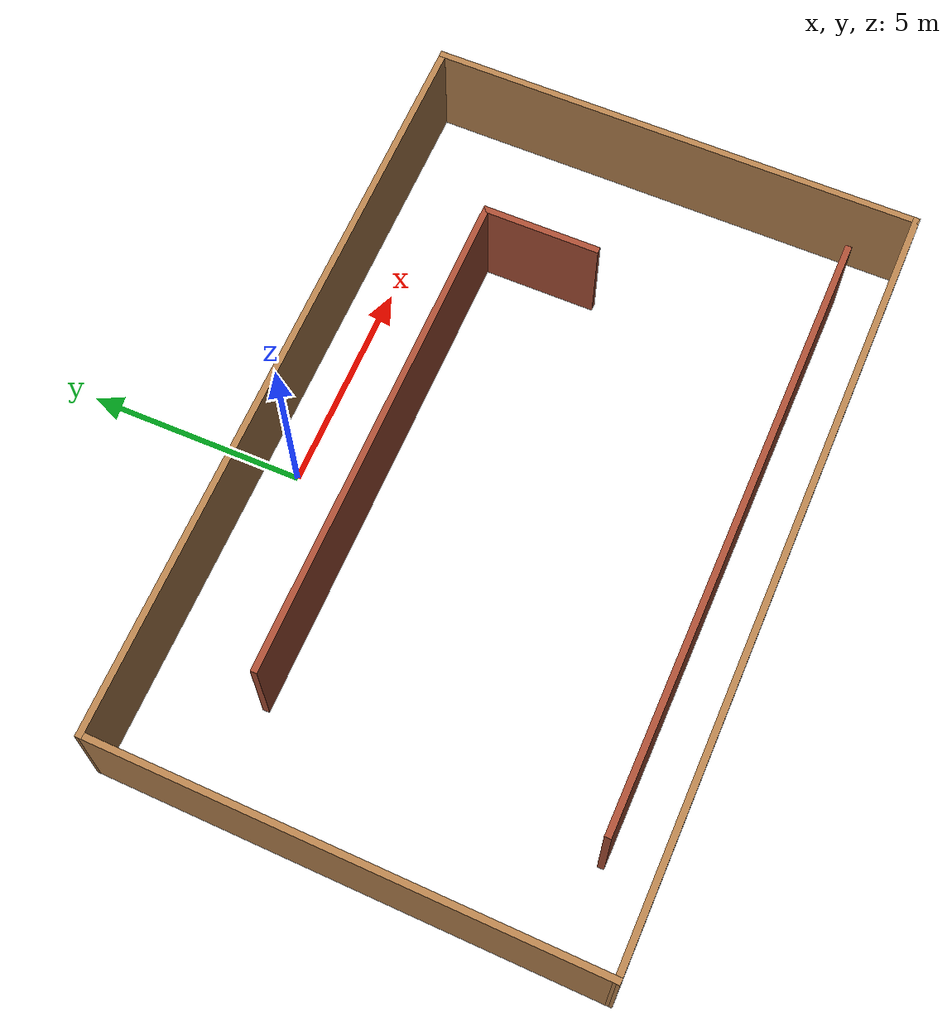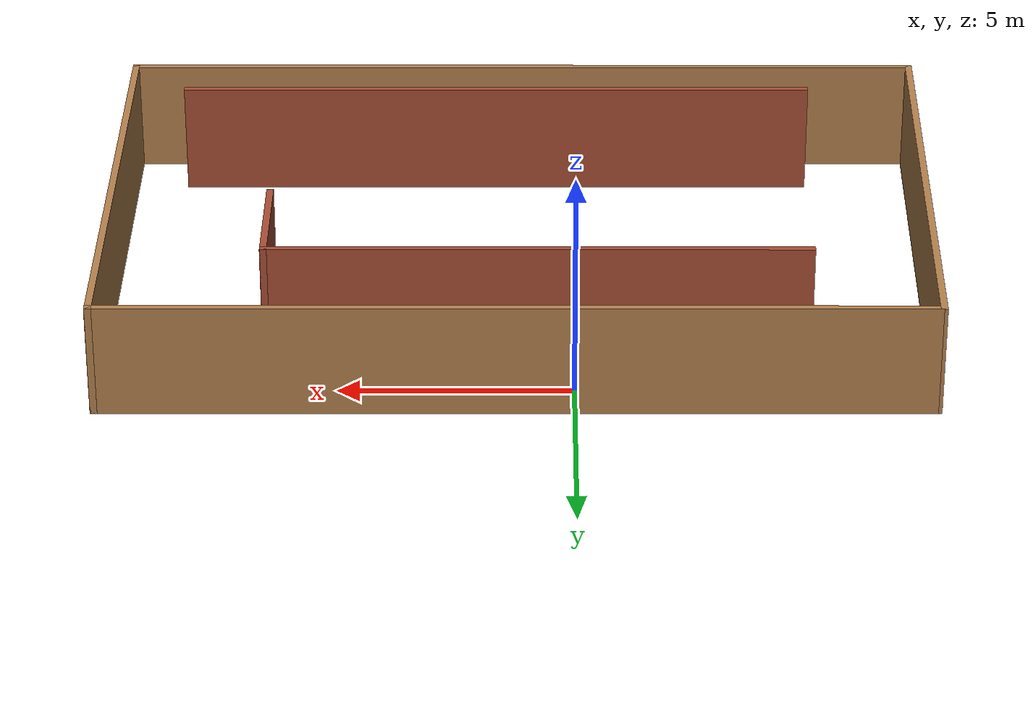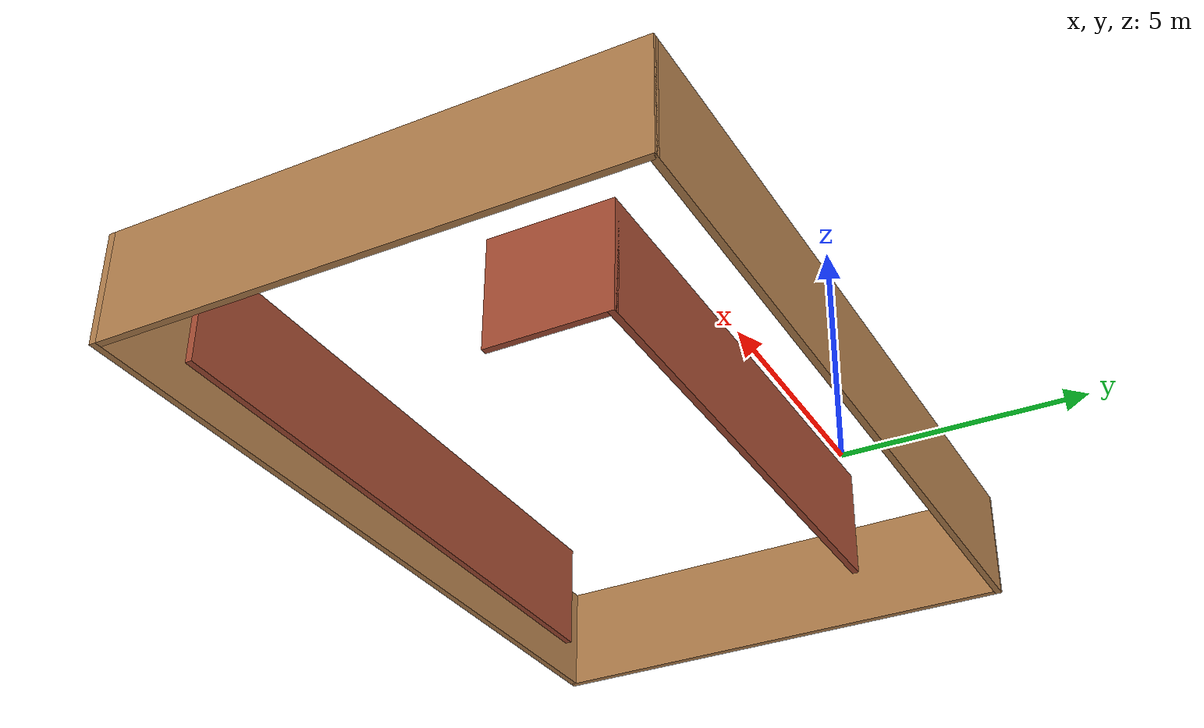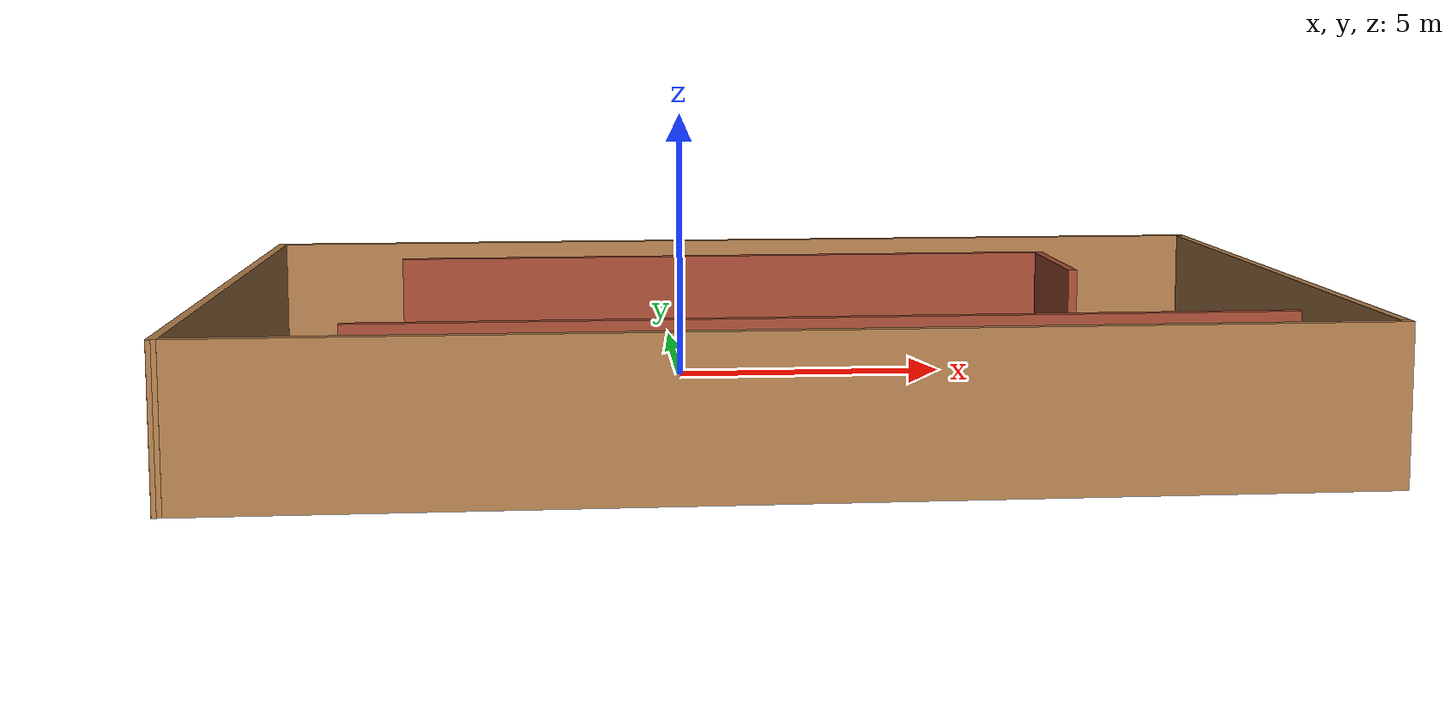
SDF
<?xml version='1.0'?>
<sdf version='1.7'>
  <model name='maze'>
    <pose>1.1063 -4.82808 0 0 -0 0</pose>
    <link name='Wall_15'>
      <collision name='Wall_15_Collision'>
        <geometry>
          <box>
            <size>17.75 0.15 2.5</size>
          </box>
        </geometry>
        <pose>0 0 1.25 0 -0 0</pose>
      </collision>
      <visual name='Wall_15_Visual'>
        <pose>0 0 1.25 0 -0 0</pose>
        <geometry>
          <box>
            <size>17.75 0.15 2.5</size>
          </box>
        </geometry>
        <material>
          <script>
            <uri>file://media/materials/scripts/gazebo.material</uri>
            <name>Gazebo/Wood</name>
          </script>
          <ambient>1 1 1 1</ambient>
        </material>
        <meta>
          <layer>0</layer>
        </meta>
      </visual>
      <pose>0.125816 5.675 0 0 -0 0</pose>
    </link>
    <link name='Wall_18'>
      <collision name='Wall_18_Collision'>
        <geometry>
          <box>
            <size>11.5 0.15 2.5</size>
          </box>
        </geometry>
        <pose>0 0 1.25 0 -0 0</pose>
      </collision>
      <visual name='Wall_18_Visual'>
        <pose>0 0 1.25 0 -0 0</pose>
        <geometry>
          <box>
            <size>11.5 0.15 2.5</size>
          </box>
        </geometry>
        <material>
          <script>
            <uri>file://media/materials/scripts/gazebo.material</uri>
            <name>Gazebo/Wood</name>
          </script>
          <ambient>1 1 1 1</ambient>
        </material>
        <meta>
          <layer>0</layer>
        </meta>
      </visual>
      <pose>8.92582 0 0 0 -0 -1.5708</pose>
    </link>
    <link name='Wall_19'>
      <collision name='Wall_19_Collision'>
        <geometry>
          <box>
            <size>18 0.15 2.5</size>
          </box>
        </geometry>
        <pose>0 0 1.25 0 -0 0</pose>
      </collision>
      <visual name='Wall_19_Visual'>
        <pose>0 0 1.25 0 -0 0</pose>
        <geometry>
          <box>
            <size>18 0.15 2.5</size>
          </box>
        </geometry>
        <material>
          <script>
            <uri>file://media/materials/scripts/gazebo.material</uri>
            <name>Gazebo/Wood</name>
          </script>
          <ambient>1 1 1 1</ambient>
        </material>
        <meta>
          <layer>0</layer>
        </meta>
      </visual>
      <pose>0.000816 -5.675 0 0 -0 3.14159</pose>
    </link>
    <link name='Wall_20'>
      <collision name='Wall_20_Collision'>
        <geometry>
          <box>
            <size>11.5028 0.15 2.5</size>
          </box>
        </geometry>
        <pose>0 0 1.25 0 -0 0</pose>
      </collision>
      <visual name='Wall_20_Visual'>
        <pose>0 0 1.25 0 -0 0</pose>
        <geometry>
          <box>
            <size>11.5028 0.15 2.5</size>
          </box>
        </geometry>
        <material>
          <script>
            <uri>file://media/materials/scripts/gazebo.material</uri>
            <name>Gazebo/Wood</name>
          </script>
          <ambient>1 1 1 1</ambient>
        </material>
        <meta>
          <layer>0</layer>
        </meta>
      </visual>
      <pose>-8.79918 0 0 0 -0 1.54877</pose>
    </link>
    <link name='Wall_22'>
      <collision name='Wall_22_Collision'>
        <geometry>
          <box>
            <size>11.75 0.15 2.5</size>
          </box>
        </geometry>
        <pose>0 0 1.25 0 -0 0</pose>
      </collision>
      <visual name='Wall_22_Visual'>
        <pose>0 0 1.25 0 -0 0</pose>
        <geometry>
          <box>
            <size>11.75 0.15 2.5</size>
          </box>
        </geometry>
        <material>
          <script>
            <uri>file://media/materials/scripts/gazebo.material</uri>
            <name>Gazebo/Bricks</name>
          </script>
          <ambient>1 1 1 1</ambient>
        </material>
        <meta>
          <layer>0</layer>
        </meta>
      </visual>
      <pose>-0.325483 3.1263 0 0 -0 0</pose>
    </link>
    <link name='Wall_23'>
      <collision name='Wall_23_Collision'>
        <geometry>
          <box>
            <size>2.75 0.15 2.5</size>
          </box>
        </geometry>
        <pose>0 0 1.25 0 -0 0</pose>
      </collision>
      <visual name='Wall_23_Visual'>
        <pose>0 0 1.25 0 -0 0</pose>
        <geometry>
          <box>
            <size>2.75 0.15 2.5</size>
          </box>
        </geometry>
        <material>
          <script>
            <uri>file://media/materials/scripts/gazebo.material</uri>
            <name>Gazebo/Bricks</name>
          </script>
          <ambient>1 1 1 1</ambient>
        </material>
        <meta>
          <layer>0</layer>
        </meta>
      </visual>
      <pose>5.47452 1.8263 0 0 -0 -1.5708</pose>
    </link>
    <link name='Wall_25'>
      <collision name='Wall_25_Collision'>
        <geometry>
          <box>
            <size>14.25 0.15 2.5</size>
          </box>
        </geometry>
        <pose>0 0 1.25 0 -0 0</pose>
      </collision>
      <visual name='Wall_25_Visual'>
        <pose>0 0 1.25 0 -0 0</pose>
        <geometry>
          <box>
            <size>14.25 0.15 2.5</size>
          </box>
        </geometry>
        <material>
          <script>
            <uri>file://media/materials/scripts/gazebo.material</uri>
            <name>Gazebo/Bricks</name>
          </script>
          <ambient>1 1 1 1</ambient>
        </material>
        <meta>
          <layer>0</layer>
        </meta>
      </visual>
      <pose>0.600873 -4.5198 0 0 -0 0</pose>
    </link>
    <static>1</static>
  </model>
</sdf>
